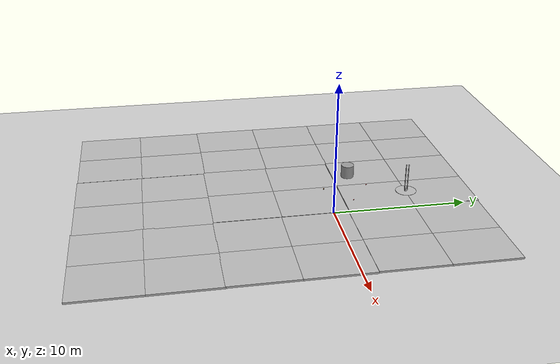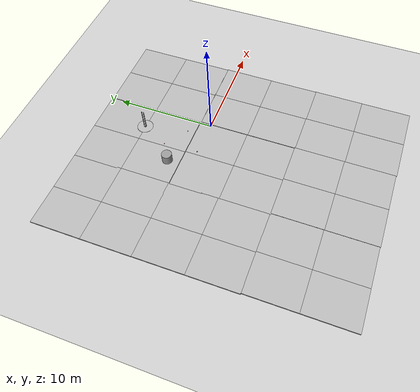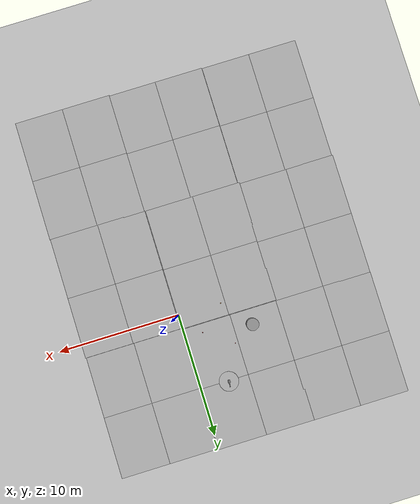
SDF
<sdf version="1.6">
 <world name="default">
  <light name="sun" type="directional">
   <pose>0 0 10 0 -0 0</pose>
   <diffuse>0.8 0.8 0.8 1</diffuse>
   <specular>0.2 0.2 0.2 1</specular>
   <attenuation>
    <range>1000</range>
    <constant>0.9</constant>
    <linear>0.01</linear>
    <quadratic>0.001</quadratic>
   </attenuation>
   <direction>-0.5 0.1 -0.9</direction>
  </light>
  <model name="ground_plane">
   <static>1</static>
   <link name="link">
    <collision name="collision">
     <geometry><plane><normal>0 0 1</normal><size>100 100</size></plane></geometry>
     <surface>
      <contact><collide_bitmask>65535</collide_bitmask></contact>
      <friction><ode><mu>100</mu><mu2>50</mu2></ode></friction>
     </surface>
    </collision>
    <visual name="visual">
     <cast_shadows>0</cast_shadows>
     <geometry><plane><normal>0 0 1</normal><size>100 100</size></plane></geometry>
     <material>
      <script><uri>file://media/materials/scripts/gazebo.material</uri><name>Gazebo/Grey</name></script>
     </material>
    </visual>
   </link>
  </model>
  <gravity>0 0 -9.8</gravity>
  <magnetic_field>6e-06 2.3e-05 -4.2e-05</magnetic_field>
  <atmosphere type="adiabatic"/>
  <physics name="default_physics" default="0" type="ode">
   <max_step_size>0.001</max_step_size>
   <real_time_factor>1</real_time_factor>
   <real_time_update_rate>1000</real_time_update_rate>
  </physics>
  <scene><ambient>0.4 0.4 0.4 1</ambient><background>0.7 0.7 0.7 1</background><shadows>1</shadows></scene>
  <spherical_coordinates>
   <surface_model>EARTH_WGS84</surface_model>
   <latitude_deg>0</latitude_deg>
   <longitude_deg>0</longitude_deg>
   <elevation>0</elevation>
   <heading_deg>0</heading_deg>
  </spherical_coordinates>
  <model name="mud_box">
   <static>1</static>
   <link name="link">
    <collision name="collision"><geometry><box><size>8 10 0.2</size></box></geometry></collision>
    <visual name="visual_1">
     <pose>-2 2.5 0 0 -0 0</pose>
     <cast_shadows>0</cast_shadows>
     <geometry><box><size>4 5 0.2</size></box></geometry>
     <material>
      <script>
       <uri>model://mud_box/materials/scripts</uri>
       <uri>model://mud_box/materials/textures</uri>
       <name>vrc/mud</name>
      </script>
     </material>
    </visual>
    <visual name="visual_2">
     <pose>2 2.5 0 0 -0 0</pose>
     <cast_shadows>0</cast_shadows>
     <geometry><box><size>4 5 0.2</size></box></geometry>
     <material>
      <script>
       <uri>model://mud_box/materials/scripts</uri>
       <uri>model://mud_box/materials/textures</uri>
       <name>vrc/mud</name>
      </script>
     </material>
    </visual>
    <visual name="visual_3">
     <pose>2 -2.5 0 0 -0 0</pose>
     <cast_shadows>0</cast_shadows>
     <geometry><box><size>4 5 0.2</size></box></geometry>
     <material>
      <script>
       <uri>model://mud_box/materials/scripts</uri>
       <uri>model://mud_box/materials/textures</uri>
       <name>vrc/mud</name>
      </script>
     </material>
    </visual>
    <visual name="visual_4">
     <pose>-2 -2.5 0 0 -0 0</pose>
     <cast_shadows>0</cast_shadows>
     <geometry><box><size>4 5 0.2</size></box></geometry>
     <material>
      <script>
       <uri>model://mud_box/materials/scripts</uri>
       <uri>model://mud_box/materials/textures</uri>
       <name>vrc/mud</name>
      </script>
     </material>
    </visual>
   </link>
   <pose>4.13442 -3.93462 0 0 -0 0</pose>
  </model>
  <model name="mud_box_0">
   <static>1</static>
   <link name="link">
    <collision name="collision"><geometry><box><size>8 10 0.2</size></box></geometry></collision>
    <visual name="visual_1">
     <pose>-2 2.5 0 0 -0 0</pose>
     <cast_shadows>0</cast_shadows>
     <geometry><box><size>4 5 0.2</size></box></geometry>
     <material>
      <script>
       <uri>model://mud_box/materials/scripts</uri>
       <uri>model://mud_box/materials/textures</uri>
       <name>vrc/mud</name>
      </script>
     </material>
    </visual>
    <visual name="visual_2">
     <pose>2 2.5 0 0 -0 0</pose>
     <cast_shadows>0</cast_shadows>
     <geometry><box><size>4 5 0.2</size></box></geometry>
     <material>
      <script>
       <uri>model://mud_box/materials/scripts</uri>
       <uri>model://mud_box/materials/textures</uri>
       <name>vrc/mud</name>
      </script>
     </material>
    </visual>
    <visual name="visual_3">
     <pose>2 -2.5 0 0 -0 0</pose>
     <cast_shadows>0</cast_shadows>
     <geometry><box><size>4 5 0.2</size></box></geometry>
     <material>
      <script>
       <uri>model://mud_box/materials/scripts</uri>
       <uri>model://mud_box/materials/textures</uri>
       <name>vrc/mud</name>
      </script>
     </material>
    </visual>
    <visual name="visual_4">
     <pose>-2 -2.5 0 0 -0 0</pose>
     <cast_shadows>0</cast_shadows>
     <geometry><box><size>4 5 0.2</size></box></geometry>
     <material>
      <script>
       <uri>model://mud_box/materials/scripts</uri>
       <uri>model://mud_box/materials/textures</uri>
       <name>vrc/mud</name>
      </script>
     </material>
    </visual>
   </link>
   <pose>-3.91196 -3.88686 0 0 -0 0</pose>
  </model>
  <model name="mud_box_1">
   <static>1</static>
   <link name="link">
    <collision name="collision"><geometry><box><size>8 10 0.2</size></box></geometry></collision>
    <visual name="visual_1">
     <pose>-2 2.5 0 0 -0 0</pose>
     <cast_shadows>0</cast_shadows>
     <geometry><box><size>4 5 0.2</size></box></geometry>
     <material>
      <script>
       <uri>model://mud_box/materials/scripts</uri>
       <uri>model://mud_box/materials/textures</uri>
       <name>vrc/mud</name>
      </script>
     </material>
    </visual>
    <visual name="visual_2">
     <pose>2 2.5 0 0 -0 0</pose>
     <cast_shadows>0</cast_shadows>
     <geometry><box><size>4 5 0.2</size></box></geometry>
     <material>
      <script>
       <uri>model://mud_box/materials/scripts</uri>
       <uri>model://mud_box/materials/textures</uri>
       <name>vrc/mud</name>
      </script>
     </material>
    </visual>
    <visual name="visual_3">
     <pose>2 -2.5 0 0 -0 0</pose>
     <cast_shadows>0</cast_shadows>
     <geometry><box><size>4 5 0.2</size></box></geometry>
     <material>
      <script>
       <uri>model://mud_box/materials/scripts</uri>
       <uri>model://mud_box/materials/textures</uri>
       <name>vrc/mud</name>
      </script>
     </material>
    </visual>
    <visual name="visual_4">
     <pose>-2 -2.5 0 0 -0 0</pose>
     <cast_shadows>0</cast_shadows>
     <geometry><box><size>4 5 0.2</size></box></geometry>
     <material>
      <script>
       <uri>model://mud_box/materials/scripts</uri>
       <uri>model://mud_box/materials/textures</uri>
       <name>vrc/mud</name>
      </script>
     </material>
    </visual>
   </link>
   <pose>4.07268 6.07374 0 0 -0 0</pose>
  </model>
  <model name="mud_box_2">
   <static>1</static>
   <link name="link">
    <collision name="collision"><geometry><box><size>8 10 0.2</size></box></geometry></collision>
    <visual name="visual_1">
     <pose>-2 2.5 0 0 -0 0</pose>
     <cast_shadows>0</cast_shadows>
     <geometry><box><size>4 5 0.2</size></box></geometry>
     <material>
      <script>
       <uri>model://mud_box/materials/scripts</uri>
       <uri>model://mud_box/materials/textures</uri>
       <name>vrc/mud</name>
      </script>
     </material>
    </visual>
    <visual name="visual_2">
     <pose>2 2.5 0 0 -0 0</pose>
     <cast_shadows>0</cast_shadows>
     <geometry><box><size>4 5 0.2</size></box></geometry>
     <material>
      <script>
       <uri>model://mud_box/materials/scripts</uri>
       <uri>model://mud_box/materials/textures</uri>
       <name>vrc/mud</name>
      </script>
     </material>
    </visual>
    <visual name="visual_3">
     <pose>2 -2.5 0 0 -0 0</pose>
     <cast_shadows>0</cast_shadows>
     <geometry><box><size>4 5 0.2</size></box></geometry>
     <material>
      <script>
       <uri>model://mud_box/materials/scripts</uri>
       <uri>model://mud_box/materials/textures</uri>
       <name>vrc/mud</name>
      </script>
     </material>
    </visual>
    <visual name="visual_4">
     <pose>-2 -2.5 0 0 -0 0</pose>
     <cast_shadows>0</cast_shadows>
     <geometry><box><size>4 5 0.2</size></box></geometry>
     <material>
      <script>
       <uri>model://mud_box/materials/scripts</uri>
       <uri>model://mud_box/materials/textures</uri>
       <name>vrc/mud</name>
      </script>
     </material>
    </visual>
   </link>
   <pose>-3.97698 6.15959 0 0 -0 0</pose>
  </model>
  <model name="mud_box_3">
   <static>1</static>
   <link name="link">
    <collision name="collision"><geometry><box><size>8 10 0.2</size></box></geometry></collision>
    <visual name="visual_1">
     <pose>-2 2.5 0 0 -0 0</pose>
     <cast_shadows>0</cast_shadows>
     <geometry><box><size>4 5 0.2</size></box></geometry>
     <material>
      <script>
       <uri>model://mud_box/materials/scripts</uri>
       <uri>model://mud_box/materials/textures</uri>
       <name>vrc/mud</name>
      </script>
     </material>
    </visual>
    <visual name="visual_2">
     <pose>2 2.5 0 0 -0 0</pose>
     <cast_shadows>0</cast_shadows>
     <geometry><box><size>4 5 0.2</size></box></geometry>
     <material>
      <script>
       <uri>model://mud_box/materials/scripts</uri>
       <uri>model://mud_box/materials/textures</uri>
       <name>vrc/mud</name>
      </script>
     </material>
    </visual>
    <visual name="visual_3">
     <pose>2 -2.5 0 0 -0 0</pose>
     <cast_shadows>0</cast_shadows>
     <geometry><box><size>4 5 0.2</size></box></geometry>
     <material>
      <script>
       <uri>model://mud_box/materials/scripts</uri>
       <uri>model://mud_box/materials/textures</uri>
       <name>vrc/mud</name>
      </script>
     </material>
    </visual>
    <visual name="visual_4">
     <pose>-2 -2.5 0 0 -0 0</pose>
     <cast_shadows>0</cast_shadows>
     <geometry><box><size>4 5 0.2</size></box></geometry>
     <material>
      <script>
       <uri>model://mud_box/materials/scripts</uri>
       <uri>model://mud_box/materials/textures</uri>
       <name>vrc/mud</name>
      </script>
     </material>
    </visual>
   </link>
   <pose>4.17364 -13.8924 0 0 -0 0</pose>
  </model>
  <model name="mud_box_4">
   <static>1</static>
   <link name="link">
    <collision name="collision"><geometry><box><size>8 10 0.2</size></box></geometry></collision>
    <visual name="visual_1">
     <pose>-2 2.5 0 0 -0 0</pose>
     <cast_shadows>0</cast_shadows>
     <geometry><box><size>4 5 0.2</size></box></geometry>
     <material>
      <script>
       <uri>model://mud_box/materials/scripts</uri>
       <uri>model://mud_box/materials/textures</uri>
       <name>vrc/mud</name>
      </script>
     </material>
    </visual>
    <visual name="visual_2">
     <pose>2 2.5 0 0 -0 0</pose>
     <cast_shadows>0</cast_shadows>
     <geometry><box><size>4 5 0.2</size></box></geometry>
     <material>
      <script>
       <uri>model://mud_box/materials/scripts</uri>
       <uri>model://mud_box/materials/textures</uri>
       <name>vrc/mud</name>
      </script>
     </material>
    </visual>
    <visual name="visual_3">
     <pose>2 -2.5 0 0 -0 0</pose>
     <cast_shadows>0</cast_shadows>
     <geometry><box><size>4 5 0.2</size></box></geometry>
     <material>
      <script>
       <uri>model://mud_box/materials/scripts</uri>
       <uri>model://mud_box/materials/textures</uri>
       <name>vrc/mud</name>
      </script>
     </material>
    </visual>
    <visual name="visual_4">
     <pose>-2 -2.5 0 0 -0 0</pose>
     <cast_shadows>0</cast_shadows>
     <geometry><box><size>4 5 0.2</size></box></geometry>
     <material>
      <script>
       <uri>model://mud_box/materials/scripts</uri>
       <uri>model://mud_box/materials/textures</uri>
       <name>vrc/mud</name>
      </script>
     </material>
    </visual>
   </link>
   <pose>-3.74735 -13.8247 0 0 -0 0</pose>
  </model>
  <model name="mud_box_5">
   <static>1</static>
   <link name="link">
    <collision name="collision"><geometry><box><size>8 10 0.2</size></box></geometry></collision>
    <visual name="visual_1">
     <pose>-2 2.5 0 0 -0 0</pose>
     <cast_shadows>0</cast_shadows>
     <geometry><box><size>4 5 0.2</size></box></geometry>
     <material>
      <script>
       <uri>model://mud_box/materials/scripts</uri>
       <uri>model://mud_box/materials/textures</uri>
       <name>vrc/mud</name>
      </script>
     </material>
    </visual>
    <visual name="visual_2">
     <pose>2 2.5 0 0 -0 0</pose>
     <cast_shadows>0</cast_shadows>
     <geometry><box><size>4 5 0.2</size></box></geometry>
     <material>
      <script>
       <uri>model://mud_box/materials/scripts</uri>
       <uri>model://mud_box/materials/textures</uri>
       <name>vrc/mud</name>
      </script>
     </material>
    </visual>
    <visual name="visual_3">
     <pose>2 -2.5 0 0 -0 0</pose>
     <cast_shadows>0</cast_shadows>
     <geometry><box><size>4 5 0.2</size></box></geometry>
     <material>
      <script>
       <uri>model://mud_box/materials/scripts</uri>
       <uri>model://mud_box/materials/textures</uri>
       <name>vrc/mud</name>
      </script>
     </material>
    </visual>
    <visual name="visual_4">
     <pose>-2 -2.5 0 0 -0 0</pose>
     <cast_shadows>0</cast_shadows>
     <geometry><box><size>4 5 0.2</size></box></geometry>
     <material>
      <script>
       <uri>model://mud_box/materials/scripts</uri>
       <uri>model://mud_box/materials/textures</uri>
       <name>vrc/mud</name>
      </script>
     </material>
    </visual>
   </link>
   <pose>-11.8489 -3.79465 0 0 -0 0</pose>
  </model>
  <model name="mud_box_6">
   <static>1</static>
   <link name="link">
    <collision name="collision"><geometry><box><size>8 10 0.2</size></box></geometry></collision>
    <visual name="visual_1">
     <pose>-2 2.5 0 0 -0 0</pose>
     <cast_shadows>0</cast_shadows>
     <geometry><box><size>4 5 0.2</size></box></geometry>
     <material>
      <script>
       <uri>model://mud_box/materials/scripts</uri>
       <uri>model://mud_box/materials/textures</uri>
       <name>vrc/mud</name>
      </script>
     </material>
    </visual>
    <visual name="visual_2">
     <pose>2 2.5 0 0 -0 0</pose>
     <cast_shadows>0</cast_shadows>
     <geometry><box><size>4 5 0.2</size></box></geometry>
     <material>
      <script>
       <uri>model://mud_box/materials/scripts</uri>
       <uri>model://mud_box/materials/textures</uri>
       <name>vrc/mud</name>
      </script>
     </material>
    </visual>
    <visual name="visual_3">
     <pose>2 -2.5 0 0 -0 0</pose>
     <cast_shadows>0</cast_shadows>
     <geometry><box><size>4 5 0.2</size></box></geometry>
     <material>
      <script>
       <uri>model://mud_box/materials/scripts</uri>
       <uri>model://mud_box/materials/textures</uri>
       <name>vrc/mud</name>
      </script>
     </material>
    </visual>
    <visual name="visual_4">
     <pose>-2 -2.5 0 0 -0 0</pose>
     <cast_shadows>0</cast_shadows>
     <geometry><box><size>4 5 0.2</size></box></geometry>
     <material>
      <script>
       <uri>model://mud_box/materials/scripts</uri>
       <uri>model://mud_box/materials/textures</uri>
       <name>vrc/mud</name>
      </script>
     </material>
    </visual>
   </link>
   <pose>-11.8615 6.16796 0 0 -0 0</pose>
  </model>
  <model name="mud_box_7">
   <static>1</static>
   <link name="link">
    <collision name="collision"><geometry><box><size>8 10 0.2</size></box></geometry></collision>
    <visual name="visual_1">
     <pose>-2 2.5 0 0 -0 0</pose>
     <cast_shadows>0</cast_shadows>
     <geometry><box><size>4 5 0.2</size></box></geometry>
     <material>
      <script>
       <uri>model://mud_box/materials/scripts</uri>
       <uri>model://mud_box/materials/textures</uri>
       <name>vrc/mud</name>
      </script>
     </material>
    </visual>
    <visual name="visual_2">
     <pose>2 2.5 0 0 -0 0</pose>
     <cast_shadows>0</cast_shadows>
     <geometry><box><size>4 5 0.2</size></box></geometry>
     <material>
      <script>
       <uri>model://mud_box/materials/scripts</uri>
       <uri>model://mud_box/materials/textures</uri>
       <name>vrc/mud</name>
      </script>
     </material>
    </visual>
    <visual name="visual_3">
     <pose>2 -2.5 0 0 -0 0</pose>
     <cast_shadows>0</cast_shadows>
     <geometry><box><size>4 5 0.2</size></box></geometry>
     <material>
      <script>
       <uri>model://mud_box/materials/scripts</uri>
       <uri>model://mud_box/materials/textures</uri>
       <name>vrc/mud</name>
      </script>
     </material>
    </visual>
    <visual name="visual_4">
     <pose>-2 -2.5 0 0 -0 0</pose>
     <cast_shadows>0</cast_shadows>
     <geometry><box><size>4 5 0.2</size></box></geometry>
     <material>
      <script>
       <uri>model://mud_box/materials/scripts</uri>
       <uri>model://mud_box/materials/textures</uri>
       <name>vrc/mud</name>
      </script>
     </material>
    </visual>
   </link>
   <pose>-11.7675 -13.7748 0 0 -0 0</pose>
  </model>
  <model name="wood_cube_7_5cm">
   <link name="link">
    <pose>0 0 0.0375 0 -0 0</pose>
    <inertial>
     <mass>0.2249</mass>
     <inertia>
      <ixx>0.000210844</ixx>
      <ixy>0</ixy>
      <ixz>0</ixz>
      <iyy>0.000210844</iyy>
      <iyz>0</iyz>
      <izz>0.000210844</izz>
     </inertia>
    </inertial>
    <collision name="collision">
     <geometry><box><size>0.075 0.075 0.075</size></box></geometry>
     <surface>
      <contact>
       <poissons_ratio>0.347</poissons_ratio>
       <elastic_modulus>8.8e+09</elastic_modulus>
       <ode><kp>100000</kp><kd>100</kd><max_vel>100</max_vel><min_depth>0.001</min_depth></ode>
      </contact>
      <friction>
       <torsional>
        <coefficient>1</coefficient>
        <use_patch_radius>0</use_patch_radius>
        <surface_radius>0.01</surface_radius>
       </torsional>
      </friction>
     </surface>
    </collision>
    <visual name="visual">
     <geometry><box><size>0.075 0.075 0.075</size></box></geometry>
     <material>
      <script><uri>file://media/materials/scripts/gazebo.material</uri><name>Gazebo/Wood</name></script>
     </material>
    </visual>
   </link>
   <pose>-3.56284 0.036464 0.098995 0 -0 -0.000173</pose>
  </model>
  <model name="cricket_ball">
   <link name="link">
    <pose>0 0 0.0375 0 -0 0</pose>
    <inertial>
     <mass>0.1467</mass>
     <inertia>
      <ixx>8.25187e-05</ixx>
      <ixy>0</ixy>
      <ixz>0</ixz>
      <iyy>8.25187e-05</iyy>
      <iyz>0</iyz>
      <izz>8.25187e-05</izz>
     </inertia>
    </inertial>
    <collision name="collision">
     <geometry><sphere><radius>0.0375</radius></sphere></geometry>
     <surface>
      <contact>
       <poissons_ratio>0.347</poissons_ratio>
       <elastic_modulus>8.8e+09</elastic_modulus>
       <ode><kp>100000</kp><kd>100</kd><max_vel>100</max_vel><min_depth>0.001</min_depth></ode>
      </contact>
      <friction>
       <torsional>
        <coefficient>1</coefficient>
        <use_patch_radius>0</use_patch_radius>
        <surface_radius>0.01</surface_radius>
       </torsional>
      </friction>
     </surface>
    </collision>
    <visual name="visual">
     <geometry><sphere><radius>0.0375</radius></sphere></geometry>
     <material>
      <script><uri>file://media/materials/scripts/gazebo.material</uri><name>Gazebo/Red</name></script>
     </material>
    </visual>
    <velocity_decay><linear>0</linear><angular>0.005</angular></velocity_decay>
   </link>
   <pose>-1.48956 1.87452 0.098986 0 -0 0</pose>
  </model>
  <model name="cricket_ball_0">
   <link name="link">
    <pose>0 0 0.0375 0 -0 0</pose>
    <inertial>
     <mass>0.1467</mass>
     <inertia>
      <ixx>8.25187e-05</ixx>
      <ixy>0</ixy>
      <ixz>0</ixz>
      <iyy>8.25187e-05</iyy>
      <iyz>0</iyz>
      <izz>8.25187e-05</izz>
     </inertia>
    </inertial>
    <collision name="collision">
     <geometry><sphere><radius>0.0375</radius></sphere></geometry>
     <surface>
      <contact>
       <poissons_ratio>0.347</poissons_ratio>
       <elastic_modulus>8.8e+09</elastic_modulus>
       <ode><kp>100000</kp><kd>100</kd><max_vel>100</max_vel><min_depth>0.001</min_depth></ode>
      </contact>
      <friction>
       <torsional>
        <coefficient>1</coefficient>
        <use_patch_radius>0</use_patch_radius>
        <surface_radius>0.01</surface_radius>
       </torsional>
      </friction>
     </surface>
    </collision>
    <visual name="visual">
     <geometry><sphere><radius>0.0375</radius></sphere></geometry>
     <material>
      <script><uri>file://media/materials/scripts/gazebo.material</uri><name>Gazebo/Red</name></script>
     </material>
    </visual>
    <velocity_decay><linear>0</linear><angular>0.005</angular></velocity_decay>
   </link>
   <pose>-3.74604 3.45926 0.098986 0 -0 0</pose>
  </model>
  <model name="unit_cylinder">
   <pose>-5.48073 2.37441 0.599998 -4e-06 -1e-06 -3.1e-05</pose>
   <link name="link">
    <inertial>
     <mass>1</mass>
     <inertia><ixx>0.145833</ixx><ixy>0</ixy><ixz>0</ixz><iyy>0.145833</iyy><iyz>0</iyz><izz>0.125</izz></inertia>
    </inertial>
    <collision name="collision">
     <geometry><cylinder><radius>0.5</radius><length>1</length></cylinder></geometry>
    </collision>
    <visual name="visual">
     <geometry><cylinder><radius>0.5</radius><length>1</length></cylinder></geometry>
     <material>
      <script><name>Gazebo/Grey</name><uri>file://media/materials/scripts/gazebo.material</uri></script>
     </material>
    </visual>
   </link>
  </model>
  <model name="mass_on_rails">
   <link name="base">
    <inertial>
     <mass>100</mass>
     <inertia><ixx>1</ixx><ixy>0</ixy><ixz>0</ixz><iyy>1</iyy><iyz>0</iyz><izz>1</izz></inertia>
    </inertial>
    <visual name="vis_base">
     <pose>0 0 0.01 0 -0 0</pose>
     <geometry><cylinder><radius>0.8</radius><length>0.01</length></cylinder></geometry>
    </visual>
    <collision name="col_base">
     <pose>0 0 0.01 0 -0 0</pose>
     <geometry><cylinder><radius>0.8</radius><length>0.01</length></cylinder></geometry>
    </collision>
    <visual name="vis_rail1">
     <pose>0 0.1 1.1 0 -0 0</pose>
     <geometry><box><size>0.05 0.05 2.2</size></box></geometry>
    </visual>
    <collision name="col_rail1">
     <pose>0 0.1 1.1 0 -0 0</pose>
     <geometry><box><size>0.05 0.05 2.2</size></box></geometry>
    </collision>
    <visual name="vis_rail2">
     <pose>0 -0.1 1.1 0 -0 0</pose>
     <geometry><box><size>0.05 0.05 2.2</size></box></geometry>
    </visual>
    <collision name="col_rail2">
     <pose>0 -0.1 1.1 0 -0 0</pose>
     <geometry><box><size>0.05 0.05 2.2</size></box></geometry>
    </collision>
   </link>
   <link name="mass">
    <inertial>
     <mass>0.1</mass>
     <pose>0 0 0.1 0 -0 0</pose>
     <inertia><ixx>0.00067</ixx><ixy>0</ixy><ixz>0</ixz><iyy>0.00067</iyy><iyz>0</iyz><izz>0.00067</izz></inertia>
    </inertial>
    <visual name="visual">
     <pose>0 0 0.1 0 -0 0</pose>
     <geometry><box><size>0.2 0.2 0.2</size></box></geometry>
    </visual>
    <collision name="collision">
     <pose>0 0 0.1 0 -0 0</pose>
     <geometry><box><size>0.2 0.2 0.2</size></box></geometry>
    </collision>
   </link>
   <joint name="joint" type="prismatic">
    <parent>base</parent>
    <child>mass</child>
    <axis>
     <dynamics>
      <damping>0.01</damping>
      <friction>0.01</friction>
      <spring_reference>0</spring_reference>
      <spring_stiffness>0</spring_stiffness>
     </dynamics>
     <xyz>0 0 1</xyz>
     <limit><lower>0</lower><upper>2</upper></limit>
     <use_parent_model_frame>0</use_parent_model_frame>
    </axis>
   </joint>
   <pose>-2.34293 6.22134 0.1 -0 -0 -0.000206</pose>
  </model>
 </world>
</sdf>
